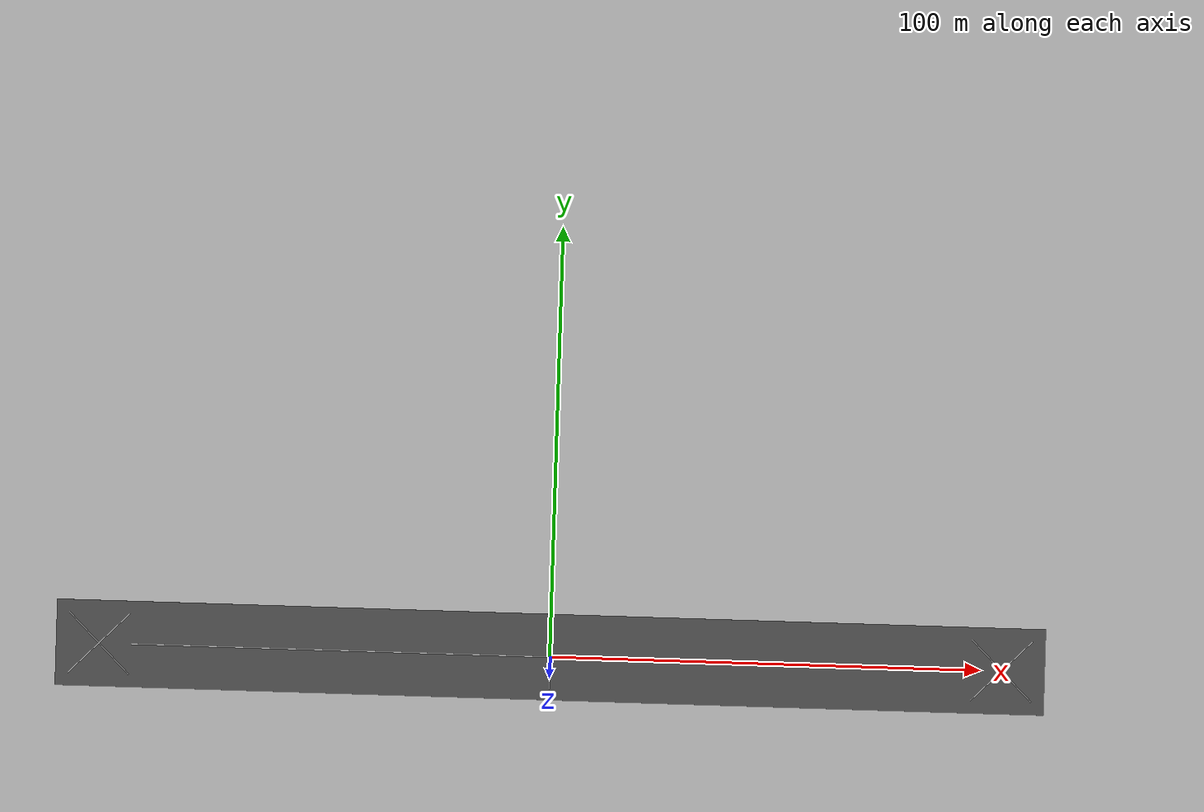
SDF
<?xml version='1.0'?>
<sdf version='1.6'>

	<model name='landing_strip'>
      <static>1</static>
	  <pose>0 0 0 0 0 0</pose>
      <link name='base_link'>

        <collision name='landing_strip_collision'>
	  	<pose>0 0 0.05 0 0 0</pose>
          <geometry>
            <box>
              <size>230 20 0.1</size>
            </box>
          </geometry>
			<surface>
				<friction>
					<ode>
						<mu>50</mu>
						<mu2>50</mu2>
					</ode>
				</friction>
				<contact>
					<ode>
						<min_depth>0.001</min_depth>
					</ode>
				</contact>
			</surface>
          <max_contacts>10</max_contacts>
        </collision>

        <visual name='landing_strip_visual'>
	  	<pose>0 0 0.05 0 0 0</pose>
          <cast_shadows>0</cast_shadows>
          <geometry>
            <box>
              <size>230 20 0.1</size>
            </box>
          </geometry>
          <material>
            <script>
              <uri>model://asphalt_plane/materials/scripts</uri>
              <uri>model://asphalt_plane/materials/textures</uri>
              <name>vrc/asphalt</name>
            </script>
          </material>
        </visual>

        <visual name='white_line_long_visual'>
	  	<pose>0 0 0.1 0 0 0</pose>
          <cast_shadows>0</cast_shadows>
          <geometry>
            <box>
              <size>195 0.25 0.001</size>
            </box>
          </geometry>
        </visual>

        <visual name='white_line_short_visual'>
	  	<pose>0 0 0.1 0 0 0</pose>
          <cast_shadows>0</cast_shadows>
          <geometry>
            <box>
              <size>0.25 15 0.001</size>
            </box>
          </geometry>
        </visual>

        <visual name='white_line1_visual'>
	  	<pose>105 0 0.1 0 0 0.785398</pose>
          <cast_shadows>0</cast_shadows>
          <geometry>
            <box>
              <size>20 0.25 0.001</size>
            </box>
          </geometry>
        </visual>

        <visual name='white_line2_visual'>
	  	<pose>105 0 0.1 0 0 -0.785398</pose>
          <cast_shadows>0</cast_shadows>
          <geometry>
            <box>
              <size>20 0.25 0.001</size>
            </box>
          </geometry>
        </visual>

        <visual name='white_line3_visual'>
	  	<pose>-105 0 0.1 0 0 0.785398</pose>
          <cast_shadows>0</cast_shadows>
          <geometry>
            <box>
              <size>20 0.25 0.001</size>
            </box>
          </geometry>
        </visual>

        <visual name='white_line4_visual'>
	  	<pose>-105 0 0.1 0 0 -0.785398</pose>
          <cast_shadows>0</cast_shadows>
          <geometry>
            <box>
              <size>20 0.25 0.001</size>
            </box>
          </geometry>
        </visual>

        <self_collide>0</self_collide>
        <kinematic>0</kinematic>
      </link>

      <link name='world'>
        <collision name='world_collision'>
          <geometry>
          	<mesh>
          	<scale>1 1 1</scale>
          		<uri>model://landing_strip/meshes/Timpa.dae</uri>
          	</mesh>
          </geometry>
        </collision>

        <visual name='world_visual'>
		<cast_shadows>0</cast_shadows>
			<geometry>
				<mesh>
					<scale>1 1 1</scale>
					<uri>model://landing_strip/meshes/Timpa.dae</uri>
				</mesh>
			</geometry>
        </visual>
	</link>

    </model>
</sdf>
